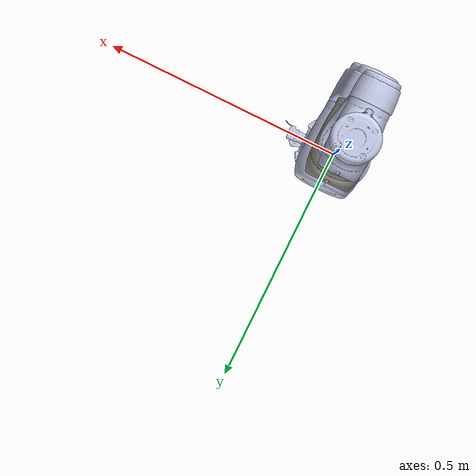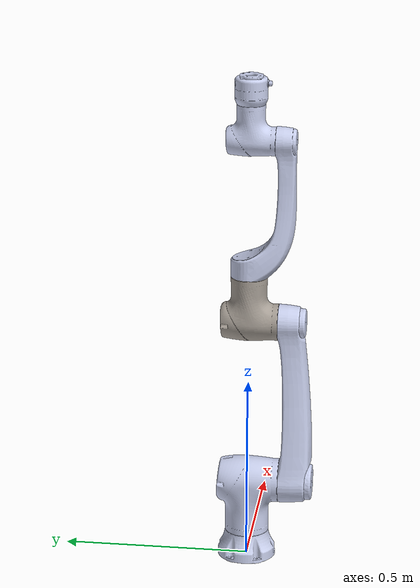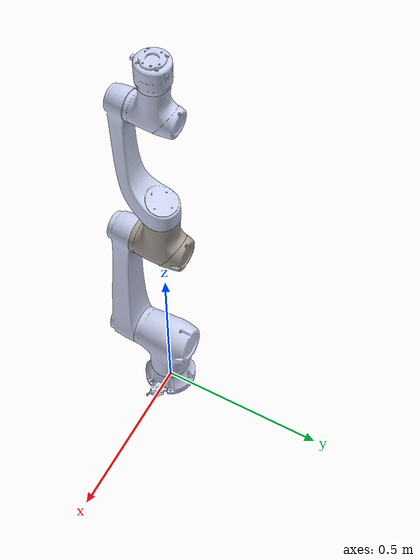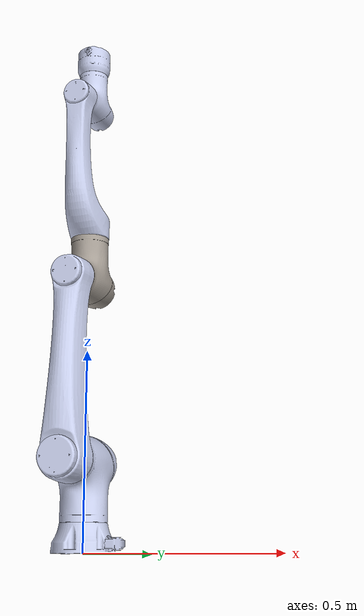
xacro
<?xml version="1.0"?>
<robot xmlns:xacro="http://www.ros.org/wiki/xacro" name="MyCo-3.5-0.95">
    <xacro:arg name="initial_positions_file" default="initial_positions.yaml" />

    <!-- Import MyCo-3.5-0.95 urdf file -->
    <xacro:include filename="$(find myco_description)/urdf/MyCo-3.5-0.95.urdf.xacro" />

    <!-- Import control_xacro -->
    <xacro:include filename="MyCo-3.5-0.95.ros2_control.xacro" />

    <xacro:MyCo-3.5-0.95_ros2_control name="FakeSystem" initial_positions_file="$(arg initial_positions_file)"/>

</robot>

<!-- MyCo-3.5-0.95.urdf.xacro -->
<robot
  name="MyCo-3.5-0.95" xmlns:xacro="http://www.ros.org/wiki/xacro">

  <xacro:include filename="$(find myco_description)/urdf/materials.xacro" />

  <xacro:include filename="$(find myco_description)/urdf/myco_robot.gazebo" />

  <xacro:include filename="$(find myco_description)/urdf/myco_transmission.xacro" />

  <xacro:property name="PI" value="3.1415926535897931"/>

  <xacro:property name="density" value="3.09"/>

  <link name="world"/>

  <joint name="world_base" type="fixed">
    <origin
      xyz="0 0 0"
      rpy="0 0 -1.57080" />
    <parent
      link="world" />
    <child
      link="myco_base_link" />
  </joint>

  <link name="myco_base_link"/>

  <joint name="myco_base_joint" type="fixed">
    <origin
      xyz="0 0 0"
      rpy="0 0 ${PI/2}" />
    <parent
      link="myco_base_link" />
    <child
      link="myco_base" />
  </joint>

 <link
    name="myco_base">
    <inertial>
      <origin
        xyz="-0.00076389 5.8308E-06 0.030442"
        rpy="0 0 0" />
      <mass
        value="0.97024" />
      <inertia
        ixx="0.001577"
        ixy="1.1433E-07"
        ixz="-2.1682E-05"
        iyy="0.0014457"
        iyz="-6.8575E-08"
        izz="0.0023657" />
    </inertial>
    <visual>
      <origin
        xyz="0 0 0"
        rpy="0 0 0" />
      <geometry>
        <mesh
          filename="file://$(find myco_description)/meshes/MyCo-3.5-0.95/myco_base.STL" />
      </geometry>
      <material
        name="">
        <color
          rgba="0.79216 0.81961 0.92941 1" />
      </material>
    </visual>
    <collision>
      <origin
        xyz="0 0 0"
        rpy="0 0 0" />
      <geometry>
        <mesh
          filename="file://$(find myco_description)/meshes/MyCo-3.5-0.95/myco_base.STL" />
      </geometry>
    </collision>
  </link>
  <link
    name="myco_link1">
    <inertial>
      <origin
        xyz="2.7646E-06 -0.0059053 -0.037087"
        rpy="0 0 0" />
      <mass
        value="3.1639" />
      <inertia
        ixx="0.012964"
        ixy="1.1968E-07"
        ixz="4.1909E-07"
        iyy="0.012143"
        iyz="0.0023646"
        izz="0.0069485" />
    </inertial>
    <visual>
      <origin
        xyz="0 0 0"
        rpy="0 0 0" />
      <geometry>
        <mesh
          filename="file://$(find myco_description)/meshes/MyCo-3.5-0.95/myco_link1.STL" />
      </geometry>
      <material
        name="">
        <color
          rgba="0.79216 0.81961 0.93333 1" />
      </material>
    </visual>
    <collision>
      <origin
        xyz="0 0 0"
        rpy="0 0 0" />
      <geometry>
        <mesh
          filename="file://$(find myco_description)/meshes/MyCo-3.5-0.95/myco_link1.STL" />
      </geometry>
    </collision>
  </link>
  <joint
    name="myco_joint1"
    type="revolute">
    <origin
      xyz="0 0 0.22"
      rpy="0 0 0" />
    <parent
      link="myco_base" />
    <child
      link="myco_link1" />
    <axis
      xyz="0 0 1" />
    <limit
      lower="-6.283"
      upper="6.283"
      effort="200"
      velocity="1.57" />
  </joint>
  <link
    name="myco_link2">
    <inertial>
      <origin
        xyz="-1.1523E-05 0.19347 0.12717"
        rpy="0 0 0" />
      <mass
        value="3.1808" />
      <inertia
        ixx="0.084234"
        ixy="-2.4981E-06"
        ixz="-6.147E-07"
        iyy="0.0033993"
        iyz="0.0028185"
        izz="0.084688" />
    </inertial>
    <visual>
      <origin
        xyz="0 0 0"
        rpy="0 0 0" />
      <geometry>
        <mesh
          filename="file://$(find myco_description)/meshes/MyCo-3.5-0.95/myco_link2.STL" />
      </geometry>
      <material
        name="">
        <color
          rgba="0.79216 0.81961 0.93333 1" />
      </material>
    </visual>
    <collision>
      <origin
        xyz="0 0 0"
        rpy="0 0 0" />
      <geometry>
        <mesh
          filename="file://$(find myco_description)/meshes/MyCo-3.5-0.95/myco_link2.STL" />
      </geometry>
    </collision>
  </link>
  <joint
    name="myco_joint2"
    type="revolute">
    <origin
      xyz="0 0 0"
      rpy="1.5708 0 0" />
    <parent
      link="myco_link1" />
    <child
      link="myco_link2" />
    <axis
      xyz="0 0 1" />
    <limit
      lower="-2.356"
      upper="2.356"
      effort="200"
      velocity="1.57" />
  </joint>
  <link
    name="myco_link3">
    <inertial>
      <origin
        xyz="0.030313 8.9157E-06 -0.0056325"
        rpy="0 0 0" />
      <mass
        value="1.9252" />
      <inertia
        ixx="0.0031696"
        ixy="-2.799E-07"
        ixz="-0.0011237"
        iyy="0.0058722"
        iyz="7.373E-07"
        izz="0.0051727" />
    </inertial>
    <visual>
      <origin
        xyz="0 0 0"
        rpy="0 0 0" />
      <geometry>
        <mesh
          filename="file://$(find myco_description)/meshes/MyCo-3.5-0.95/myco_link3.STL" />
      </geometry>
      <material
        name="">
        <color
          rgba="0.65098 0.61961 0.58431 1" />
      </material>
    </visual>
    <collision>
      <origin
        xyz="0 0 0"
        rpy="0 0 0" />
      <geometry>
        <mesh
          filename="file://$(find myco_description)/meshes/MyCo-3.5-0.95/myco_link3.STL" />
      </geometry>
    </collision>
  </link>
  <joint
    name="myco_joint3"
    type="revolute">
    <origin
      xyz="0 0.455 0"
      rpy="3.1416 0 1.5708" />
    <parent
      link="myco_link2" />
    <child
      link="myco_link3" />
    <axis
      xyz="0 0 1" />
    <limit
      lower="-2.618"
      upper="2.618"
      effort="200"
      velocity="1.57" />
  </joint>
  <link
    name="myco_link4">
    <inertial>
      <origin
        xyz="8.6147E-06 -0.063329 0.27812"
        rpy="0 0 0" />
      <mass
        value="1.5932" />
      <inertia
        ixx="0.026955"
        ixy="-3.9442E-07"
        ixz="1.8793E-06"
        iyy="0.024823"
        iyz="0.0057537"
        izz="0.0035573" />
    </inertial>
    <visual>
      <origin
        xyz="0 0 0"
        rpy="0 0 0" />
      <geometry>
        <mesh
          filename="file://$(find myco_description)/meshes/MyCo-3.5-0.95/myco_link4.STL" />
      </geometry>
      <material
        name="">
        <color
          rgba="0.79216 0.81961 0.93333 1" />
      </material>
    </visual>
    <collision>
      <origin
        xyz="0 0 0"
        rpy="0 0 0" />
      <geometry>
        <mesh
          filename="file://$(find myco_description)/meshes/MyCo-3.5-0.95/myco_link4.STL" />
      </geometry>
    </collision>
  </link>
  <joint
    name="myco_joint4"
    type="revolute">
    <origin
      xyz="0 0 0"
      rpy="1.5708 0 1.5708" />
    <parent
      link="myco_link3" />
    <child
      link="myco_link4" />
    <axis
      xyz="0 0 1" />
    <limit
      lower="-6.283"
      upper="6.283"
      effort="104"
      velocity="1.57" />
  </joint>
  <link
    name="myco_link5">
    <inertial>
      <origin
        xyz="-4.6631E-07 -0.022517 -0.0042996"
        rpy="0 0 0" />
      <mass
        value="0.99024" />
      <inertia
        ixx="0.001931"
        ixy="3.9655E-08"
        ixz="9.4463E-08"
        iyy="0.0010972"
        iyz="0.00037479"
        izz="0.0016081" />
    </inertial>
    <visual>
      <origin
        xyz="0 0 0"
        rpy="0 0 0" />
      <geometry>
        <mesh
          filename="file://$(find myco_description)/meshes/MyCo-3.5-0.95/myco_link5.STL" />
      </geometry>
      <material
        name="">
        <color
          rgba="0.79216 0.81961 0.93333 1" />
      </material>
    </visual>
    <collision>
      <origin
        xyz="0 0 0"
        rpy="0 0 0" />
      <geometry>
        <mesh
          filename="file://$(find myco_description)/meshes/MyCo-3.5-0.95/myco_link5.STL" />
      </geometry>
    </collision>
  </link>
  <joint
    name="myco_joint5"
    type="revolute">
    <origin
      xyz="0 0 0.495"
      rpy="-1.5708 0 0" />
    <parent
      link="myco_link4" />
    <child
      link="myco_link5" />
    <axis
      xyz="0 0 1" />
    <limit
      lower="-2.565"
      upper="2.565"
      effort="34"
      velocity="1.57" />
  </joint>
  <link
    name="myco_link6">
    <inertial>
      <origin
        xyz="-6.0589E-07 -0.00014734 0.13775"
        rpy="0 0 0" />
      <mass
        value="0.38809" />
      <inertia
        ixx="0.0003233"
        ixy="-1.1678E-07"
        ixz="9.15E-08"
        iyy="0.00032092"
        iyz="9.261E-07"
        izz="0.00036139" />
    </inertial>
    <visual>
      <origin
        xyz="0 0 0"
        rpy="0 0 0" />
      <geometry>
        <mesh
          filename="file://$(find myco_description)/meshes/MyCo-3.5-0.95/myco_link6.STL" />
      </geometry>
      <material
        name="">
        <color
          rgba="0.79216 0.81961 0.93333 1" />
      </material>
    </visual>
    <collision>
      <origin
        xyz="0 0 0"
        rpy="0 0 0" />
      <geometry>
        <mesh
          filename="file://$(find myco_description)/meshes/MyCo-3.5-0.95/myco_link6.STL" />
      </geometry>
    </collision>
  </link>
  <joint
    name="myco_joint6"
    type="revolute">
    <origin
      xyz="0 0 0"
      rpy="1.5708 0 0" />
    <parent
      link="myco_link5" />
    <child
      link="myco_link6" />
    <axis
      xyz="0 0 1" />
    <limit
      lower="-6.283"
      upper="6.283"
      effort="34"
      velocity="1.57" />
  </joint>
  <link
    name="myco_end_link">
  </link>
  <joint
    name="myco_end_joint"
    type="fixed">
    <origin
      xyz="0 0 0.175"
      rpy="0 0 0" />
    <parent
      link="myco_link6" />
    <child
      link="myco_end_link" />
    <axis
      xyz="0 0 0" />
  </joint>

</robot>
